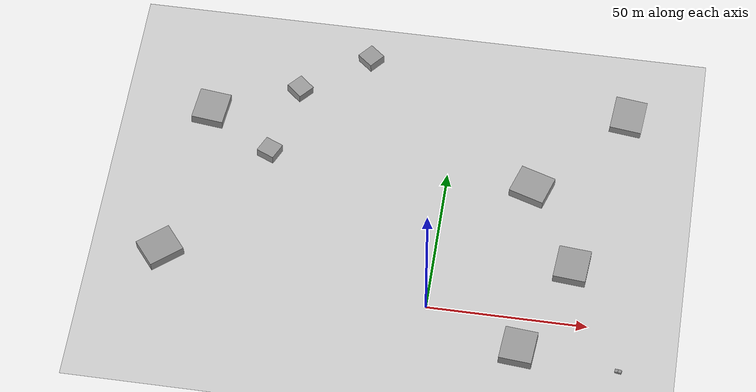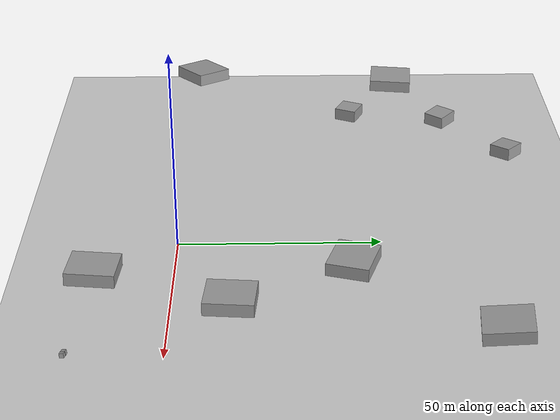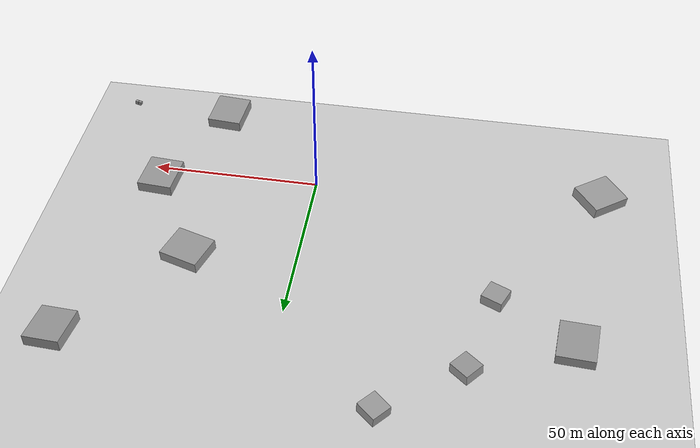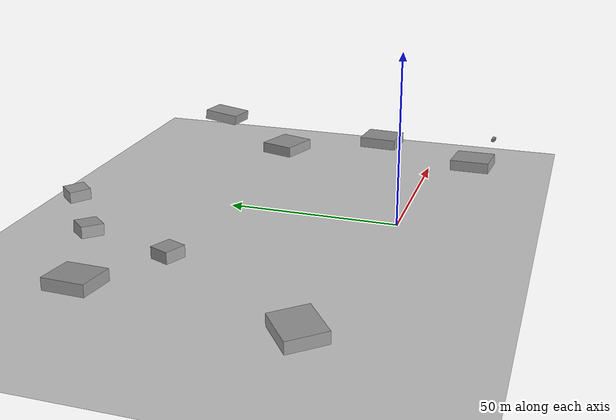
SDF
<sdf version="1.7">
 <world name="default">
  <model name="ground_plane">
   <static>1</static>
   <link name="link">
    <collision name="collision">
     <geometry><plane><normal>0 0 1</normal><size>100 100</size></plane></geometry>
     <surface>
      <contact><collide_bitmask>65535</collide_bitmask></contact>
      <friction><ode><mu>100</mu><mu2>50</mu2></ode></friction>
     </surface>
    </collision>
    <visual name="visual">
     <cast_shadows>0</cast_shadows>
     <geometry><plane><normal>0 0 1</normal><size>100 100</size></plane></geometry>
     <material>
      <script><uri>model://media/materials/scripts/gazebo.material</uri><name>Gazebo/Grey</name></script>
     </material>
    </visual>
   </link>
  </model>
  <model name="unit_box_clone_16">
   <pose>61.2399 -19.5212 8.72779 0.145619 -0.112569 -0.176445</pose>
   <link name="link">
    <inertial>
     <mass>1</mass>
     <inertia>
      <ixx>0.166667</ixx>
      <ixy>0</ixy>
      <ixz>0</ixz>
      <iyy>0.166667</iyy>
      <iyz>0</iyz>
      <izz>0.166667</izz>
     </inertia>
    </inertial>
    <collision name="collision"><geometry><box><size>1 1 1</size></box></geometry></collision>
    <visual name="visual">
     <geometry><box><size>1 1 1</size></box></geometry>
     <material>
      <script><name>Gazebo/Grey</name><uri>model://media/materials/scripts/gazebo.material</uri></script>
     </material>
    </visual>
   </link>
  </model>
  <model name="unit_box_clone_20">
   <pose>60.2126 -19.3202 8.61514 0.156347 -0.114712 -0.161824</pose>
   <link name="link">
    <inertial>
     <mass>1</mass>
     <inertia>
      <ixx>0.166667</ixx>
      <ixy>0</ixy>
      <ixz>0</ixz>
      <iyy>0.166667</iyy>
      <iyz>0</iyz>
      <izz>0.166667</izz>
     </inertia>
    </inertial>
    <collision name="collision"><geometry><box><size>1 1 1</size></box></geometry></collision>
    <visual name="visual">
     <geometry><box><size>1 1 1</size></box></geometry>
     <material>
      <script><name>Gazebo/Grey</name><uri>model://media/materials/scripts/gazebo.material</uri></script>
     </material>
    </visual>
   </link>
  </model>
  <model name="unit_box_clone_44">
   <pose>43.0652 14.472 10.7656 -0.00967 0.016012 -0.079743</pose>
   <link name="link">
    <inertial>
     <mass>1</mass>
     <inertia>
      <ixx>0.166667</ixx>
      <ixy>0</ixy>
      <ixz>0</ixz>
      <iyy>0.166667</iyy>
      <iyz>0</iyz>
      <izz>0.166667</izz>
     </inertia>
    </inertial>
    <collision name="collision"><geometry><box><size>10.0441 11.3365 3.10934</size></box></geometry></collision>
    <visual name="visual">
     <geometry><box><size>10.0441 11.3365 3.10934</size></box></geometry>
     <material>
      <script><name>Gazebo/Grey</name><uri>model://media/materials/scripts/gazebo.material</uri></script>
     </material>
    </visual>
   </link>
  </model>
  <model name="unit_box_clone_44_clone">
   <pose>27.5539 41.8209 10.8786 -0.021103 -0.007905 -1.87636</pose>
   <link name="link">
    <inertial>
     <mass>1</mass>
     <inertia>
      <ixx>0.166667</ixx>
      <ixy>0</ixy>
      <ixz>0</ixz>
      <iyy>0.166667</iyy>
      <iyz>0</iyz>
      <izz>0.166667</izz>
     </inertia>
    </inertial>
    <collision name="collision"><geometry><box><size>10.0441 11.3365 3.10934</size></box></geometry></collision>
    <visual name="visual">
     <geometry><box><size>10.0441 11.3365 3.10934</size></box></geometry>
     <material>
      <script><name>Gazebo/Grey</name><uri>model://media/materials/scripts/gazebo.material</uri></script>
     </material>
    </visual>
   </link>
  </model>
  <model name="unit_box_clone_44_clone_0">
   <pose>30.1326 -16.5794 10.7082 -0.026823 0.009486 -0.084197</pose>
   <link name="link">
    <inertial>
     <mass>1</mass>
     <inertia>
      <ixx>0.166667</ixx>
      <ixy>0</ixy>
      <ixz>0</ixz>
      <iyy>0.166667</iyy>
      <iyz>0</iyz>
      <izz>0.166667</izz>
     </inertia>
    </inertial>
    <collision name="collision"><geometry><box><size>10.0441 11.3365 3.10934</size></box></geometry></collision>
    <visual name="visual">
     <geometry><box><size>10.0441 11.3365 3.10934</size></box></geometry>
     <material>
      <script><name>Gazebo/Grey</name><uri>model://media/materials/scripts/gazebo.material</uri></script>
     </material>
    </visual>
   </link>
  </model>
  <model name="unit_box_clone_44_clone_1">
   <pose>-77.0537 57.3534 10.9266 -0.029379 0.047754 -0.088217</pose>
   <link name="link">
    <inertial>
     <mass>1</mass>
     <inertia>
      <ixx>0.166667</ixx>
      <ixy>0</ixy>
      <ixz>0</ixz>
      <iyy>0.166667</iyy>
      <iyz>0</iyz>
      <izz>0.166667</izz>
     </inertia>
    </inertial>
    <collision name="collision"><geometry><box><size>10.0441 11.3365 3.10934</size></box></geometry></collision>
    <visual name="visual">
     <geometry><box><size>10.0441 11.3365 3.10934</size></box></geometry>
     <material>
      <script><name>Gazebo/Grey</name><uri>model://media/materials/scripts/gazebo.material</uri></script>
     </material>
    </visual>
   </link>
  </model>
  <model name="unit_box_clone_44_clone_7">
   <pose>54.7544 73.0681 10.6131 0.100143 0.06131 -0.083945</pose>
   <link name="link">
    <inertial>
     <mass>1</mass>
     <inertia>
      <ixx>0.166667</ixx>
      <ixy>0</ixy>
      <ixz>0</ixz>
      <iyy>0.166667</iyy>
      <iyz>0</iyz>
      <izz>0.166667</izz>
     </inertia>
    </inertial>
    <collision name="collision"><geometry><box><size>10.0441 11.3365 3.10934</size></box></geometry></collision>
    <visual name="visual">
     <geometry><box><size>10.0441 11.3365 3.10934</size></box></geometry>
     <material>
      <script><name>Gazebo/Grey</name><uri>model://media/materials/scripts/gazebo.material</uri></script>
     </material>
    </visual>
   </link>
  </model>
  <model name="unit_box_clone_44_clone_1_clone">
   <pose>-50.2115 69.0163 10.947 0.054457 0.013324 0.867438</pose>
   <link name="link">
    <inertial>
     <mass>1</mass>
     <inertia>
      <ixx>0.166667</ixx>
      <ixy>0</ixy>
      <ixz>0</ixz>
      <iyy>0.166667</iyy>
      <iyz>0</iyz>
      <izz>0.166667</izz>
     </inertia>
    </inertial>
    <collision name="collision"><geometry><box><size>5.67294 5.93826 3.10934</size></box></geometry></collision>
    <visual name="visual">
     <geometry><box><size>5.67294 5.93826 3.10934</size></box></geometry>
     <material>
      <script><name>Gazebo/Grey</name><uri>model://media/materials/scripts/gazebo.material</uri></script>
     </material>
    </visual>
   </link>
  </model>
  <model name="unit_box_clone_44_clone_1_clone_clone">
   <pose>-29.5084 84.2967 10.9467 -0.032218 -0.029359 0.862308</pose>
   <link name="link">
    <inertial>
     <mass>1</mass>
     <inertia>
      <ixx>0.166667</ixx>
      <ixy>0</ixy>
      <ixz>0</ixz>
      <iyy>0.166667</iyy>
      <iyz>0</iyz>
      <izz>0.166667</izz>
     </inertia>
    </inertial>
    <collision name="collision"><geometry><box><size>5.67294 5.93826 3.10934</size></box></geometry></collision>
    <visual name="visual">
     <geometry><box><size>5.67294 5.93826 3.10934</size></box></geometry>
     <material>
      <script><name>Gazebo/Grey</name><uri>model://media/materials/scripts/gazebo.material</uri></script>
     </material>
    </visual>
   </link>
  </model>
  <model name="unit_box_clone_44_clone_1_clone_clone_0">
   <pose>-55.9799 44.4349 10.2333 0.001178 0.015566 1.15272</pose>
   <link name="link">
    <inertial>
     <mass>1</mass>
     <inertia>
      <ixx>0.166667</ixx>
      <ixy>0</ixy>
      <ixz>0</ixz>
      <iyy>0.166667</iyy>
      <iyz>0</iyz>
      <izz>0.166667</izz>
     </inertia>
    </inertial>
    <collision name="collision"><geometry><box><size>5.67294 5.93826 3.10934</size></box></geometry></collision>
    <visual name="visual">
     <geometry><box><size>5.67294 5.93826 3.10934</size></box></geometry>
     <material>
      <script><name>Gazebo/Grey</name><uri>model://media/materials/scripts/gazebo.material</uri></script>
     </material>
    </visual>
   </link>
  </model>
  <model name="unit_box_clone_44_clone_4_clone">
   <pose>-83.1319 2.96822 10.9595 0.048634 -0.046293 -0.909263</pose>
   <link name="link">
    <inertial>
     <mass>1</mass>
     <inertia>
      <ixx>0.166667</ixx>
      <ixy>0</ixy>
      <ixz>0</ixz>
      <iyy>0.166667</iyy>
      <iyz>0</iyz>
      <izz>0.166667</izz>
     </inertia>
    </inertial>
    <collision name="collision"><geometry><box><size>10.0441 11.3365 3.10934</size></box></geometry></collision>
    <visual name="visual">
     <geometry><box><size>10.0441 11.3365 3.10934</size></box></geometry>
     <material>
      <script><name>Gazebo/Grey</name><uri>model://media/materials/scripts/gazebo.material</uri></script>
     </material>
    </visual>
   </link>
  </model>
 </world>
</sdf>
